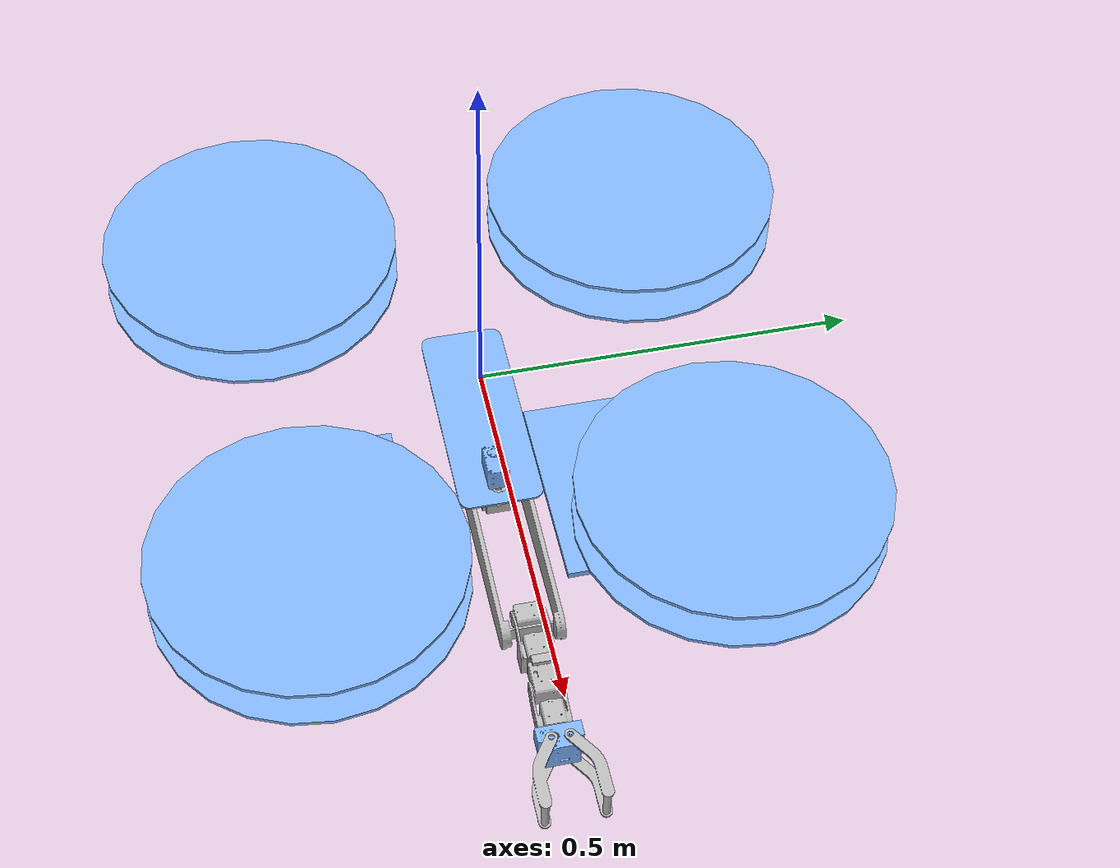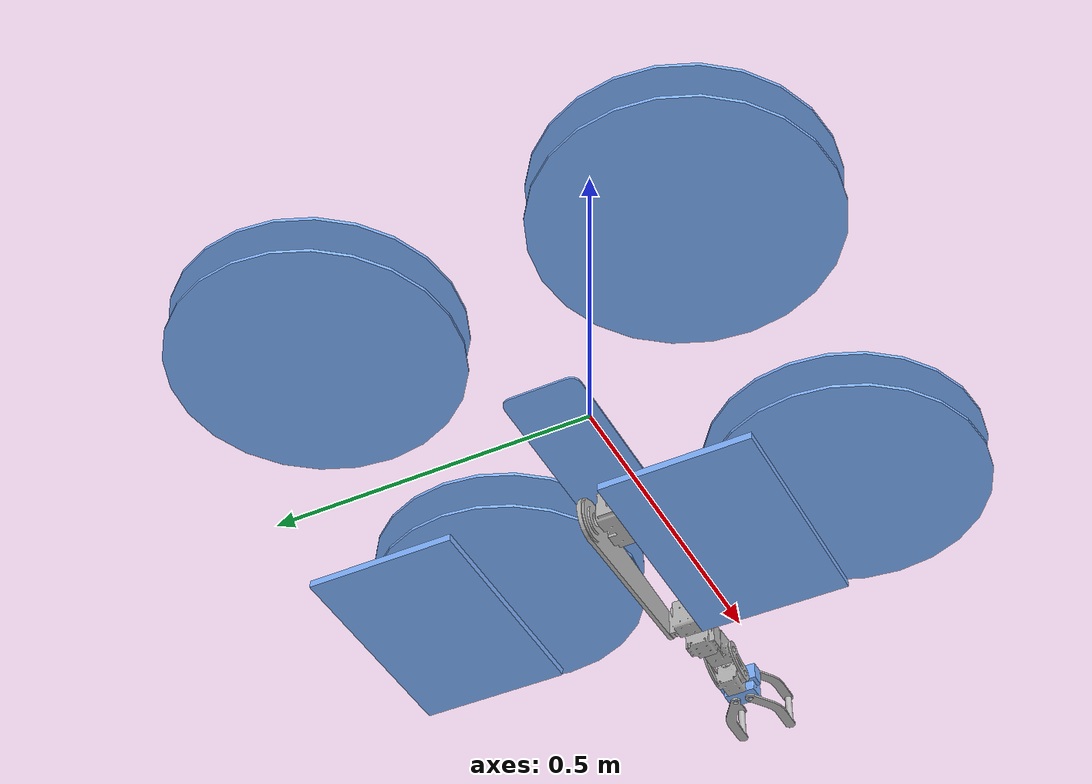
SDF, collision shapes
<sdf version='1.6'>
  <model name='hummingbird'>
    <link name='base_link'>
      <pose frame=''>0 0 0 0 -0 0</pose>
      <inertial>
        <pose frame=''>-0.00612 2.2e-05 -0.052639 0 -0 0</pose>
        <mass>2.24682</mass>
        <inertia>
          <ixx>0.0242961</ixx>
          <ixy>-3.09634e-06</ixy>
          <ixz>-4.73268e-06</ixz>
          <iyy>0.0224294</iyy>
          <iyz>1.91916e-06</iyz>
          <izz>0.0236308</izz>
        </inertia>
      </inertial>
      <collision name='base_link_fixed_joint_lump__01DOF_frame0_collision'>
        <pose frame=''>0.090596 0 -0.116 0 -0 0</pose>
        <geometry>
          <mesh>
            <scale>1 1 1</scale>
            <uri>model://simplified_asm_new_v5/meshes/01DOF_frame0.STL</uri>
          </mesh>
        </geometry>
      </collision>
      <collision name='base_link_inertia_collision_1'>
        <pose frame=''>-0.03 0.2 -0.316 0 -0 0</pose>
        <geometry>
          <box>
            <size>0.3 0.2 0.01</size>
          </box>
        </geometry>
        <surface>
          <contact>
            <ode>
              <min_depth>0.001</min_depth>
              <max_vel>0</max_vel>
            </ode>
          </contact>
          <friction>
            <ode/>
          </friction>
        </surface>
      </collision>
      <collision name='base_link_inertia_collision_2'>
        <pose frame=''>-0.03 -0.2 -0.316 0 -0 0</pose>
        <geometry>
          <box>
            <size>0.3 0.2 0.01</size>
          </box>
        </geometry>
        <surface>
          <contact>
            <ode>
              <min_depth>0.001</min_depth>
              <max_vel>0</max_vel>
            </ode>
          </contact>
          <friction>
            <ode/>
          </friction>
        </surface>
      </collision>
      <visual name='base_link_fixed_joint_lump__01DOF_frame0_visual'>
        <pose frame=''>0.090596 0 -0.116 0 -0 0</pose>
        <geometry>
          <mesh>
            <scale>1 1 1</scale>
            <uri>model://simplified_asm_new_v5/meshes/01DOF_frame0.STL</uri>
          </mesh>
        </geometry>
      </visual>
      <visual name='base_link_inertia_visual_1'>
        <pose frame=''>0 0 0 0 -0 0</pose>
        <geometry>
          <mesh>
            <scale>1 1 1</scale>
            <uri>meshes/base_link.dae</uri>
          </mesh>
        </geometry>
        <material>
          <ambient>1 0 0 1</ambient>
          <diffuse>0.5 0.7 1.0 1.0</diffuse>
          <specular>0.5 0.5 0.5 1</specular>
          <emissive>0 0 0 0</emissive>
        </material>
      </visual>
      <visual name='base_link_fixed_joint_lump__battery_link_visual_2'>
        <pose frame=''>-0.024927 0 -0.059795 0 -0 0</pose>
        <geometry>
          <mesh>
            <scale>1 1 1</scale>
            <uri>meshes/battery_link.dae</uri>
          </mesh>
        </geometry>
      </visual>
      <visual name='base_link_fixed_joint_lump__camera_link_visual_3'>
        <pose frame=''>0.1549 0 -0.1325 1.5708 -0 1.5708</pose>
        <geometry>
          <mesh>
            <scale>1 1 1</scale>
            <uri>meshes/d435.dae</uri>
          </mesh>
        </geometry>
        <material>
          <script>
            <uri>__default__</uri>
            <name>__default__</name>
          </script>
        </material>
      </visual>
      <visual name='base_link_fixed_joint_lump__link_supporter_1_visual_4'>
        <pose frame=''>-0.00858 0.1135 -0.21299 0 -0 0</pose>
        <geometry>
          <mesh>
            <scale>1 1 1</scale>
            <uri>meshes/link_supporter_1.dae</uri>
          </mesh>
        </geometry>
      </visual>
      <visual name='base_link_fixed_joint_lump__link_supporter_2_visual_5'>
        <pose frame=''>-0.00858 -0.1135 -0.21299 0 -0 0</pose>
        <geometry>
          <mesh>
            <scale>1 1 1</scale>
            <uri>meshes/link_supporter_2.dae</uri>
          </mesh>
        </geometry>
      </visual>
      <velocity_decay/>
      <velocity_decay/>
      <self_collide>0</self_collide>
      <enable_wind>0</enable_wind>
      <kinematic>0</kinematic>
      <gravity>1</gravity>
      <sensor name='realsensecolor' type='camera'>
        <camera name='realsense'>
          <horizontal_fov>1.21126</horizontal_fov>
          <image>
            <width>640</width>
            <height>480</height>
            <format>RGB_INT8</format>
          </image>
          <clip>
            <near>0.1</near>
            <far>100</far>
          </clip>
          <noise>
            <type>gaussian</type>
            <mean>0</mean>
            <stddev>0.007</stddev>
          </noise>
        </camera>
        <always_on>1</always_on>
        <update_rate>60</update_rate>
        <visualize>1</visualize>
        <pose frame=''>0.14 0.0175 -0.1325 0 -0 0</pose>
      </sensor>
      <sensor name='realsenseired1' type='camera'>
        <camera name='realsense'>
          <horizontal_fov>1.21126</horizontal_fov>
          <image>
            <width>640</width>
            <height>480</height>
            <format>L_INT8</format>
          </image>
          <clip>
            <near>0.1</near>
            <far>100</far>
          </clip>
          <noise>
            <type>gaussian</type>
            <mean>0</mean>
            <stddev>0.005</stddev>
          </noise>
        </camera>
        <always_on>1</always_on>
        <update_rate>90</update_rate>
        <visualize>0</visualize>
        <pose frame=''>0.14 0.0175 -0.1325 0 -0 0</pose>
      </sensor>
      <sensor name='realsenseired2' type='camera'>
        <camera name='realsense'>
          <horizontal_fov>1.21126</horizontal_fov>
          <image>
            <width>640</width>
            <height>480</height>
            <format>L_INT8</format>
          </image>
          <clip>
            <near>0.1</near>
            <far>100</far>
          </clip>
          <noise>
            <type>gaussian</type>
            <mean>0</mean>
            <stddev>0.005</stddev>
          </noise>
        </camera>
        <always_on>1</always_on>
        <update_rate>90</update_rate>
        <visualize>0</visualize>
        <pose frame=''>0.14 0.0175 -0.1325 0 -0 0</pose>
      </sensor>
      <sensor name='realsensedepth' type='depth'>
        <camera name='realsense'>
          <horizontal_fov>1.21126</horizontal_fov>
          <image>
            <width>640</width>
            <height>480</height>
          </image>
          <clip>
            <near>0.1</near>
            <far>100</far>
          </clip>
          <noise>
            <type>gaussian</type>
            <mean>0</mean>
            <stddev>0.001</stddev>
          </noise>
        </camera>
        <always_on>1</always_on>
        <update_rate>90</update_rate>
        <visualize>0</visualize>
        <pose frame=''>0.14 0.0175 -0.1325 0 -0 0</pose>
      </sensor>
      <gravity>1</gravity>
      <velocity_decay/>
      <self_collide>0</self_collide>
      <gravity>1</gravity>
      <sensor name='imu_sensor' type='imu'>
        <always_on>1</always_on>
        <update_rate>200</update_rate>
        <visualize>1</visualize>
        <plugin name='imu_plugin' filename='libgazebo_ros_imu_sensor.so'>
          <topicName>d435i/imu</topicName>
          <bodyName>camera_link</bodyName>
          <updateRateHZ>200.0</updateRateHZ>
          <gaussianNoise>0.0</gaussianNoise>
          <xyzOffset>0.0 0.0 0.0</xyzOffset>
          <rpyOffset>0.0 0.0 0.0</rpyOffset>
          <frameName>imu_link_</frameName>
        </plugin>
        <pose frame=''>0.14 0.0175 -0.1325 0 -0 0</pose>
      </sensor>
    </link>
    <link name='/imu_link'>
      <pose frame=''>0 0 0 0 -0 0</pose>
      <inertial>
        <pose frame=''>0 0 0 0 -0 0</pose>
        <mass>0.015</mass>
        <inertia>
          <ixx>1e-05</ixx>
          <ixy>0</ixy>
          <ixz>0</ixz>
          <iyy>1e-05</iyy>
          <iyz>0</iyz>
          <izz>1e-05</izz>
        </inertia>
      </inertial>
    </link>
    <joint name='/imu_joint' type='revolute'>
      <child>/imu_link</child>
      <parent>base_link</parent>
      <axis>
        <xyz>1 0 0</xyz>
        <limit>
          <lower>0</lower>
          <upper>0</upper>
          <effort>0</effort>
          <velocity>0</velocity>
        </limit>
        <dynamics>
          <spring_reference>0</spring_reference>
          <spring_stiffness>0</spring_stiffness>
        </dynamics>
        <use_parent_model_frame>1</use_parent_model_frame>
      </axis>
    </joint>
    <link name='02DOF_frame1'>
      <pose frame=''>0.090596 0 -0.116 0 -0 0</pose>
      <inertial>
        <pose frame=''>0.033728 -0.000275 0.0246 0 -0 0</pose>
        <mass>0.19851</mass>
        <inertia>
          <ixx>0.000141122</ixx>
          <ixy>7.22807e-07</ixy>
          <ixz>4.64909e-08</ixz>
          <iyy>0.000771231</iyy>
          <iyz>-4.80458e-11</iyz>
          <izz>0.000878136</izz>
        </inertia>
      </inertial>
      <collision name='02DOF_frame1_collision'>
        <pose frame=''>0 0 0 0 -0 0</pose>
        <geometry>
          <mesh>
            <scale>1 1 1</scale>
            <uri>model://simplified_asm_new_v5/meshes/02DOF_frame1.STL</uri>
          </mesh>
        </geometry>
      </collision>
      <visual name='02DOF_frame1_visual'>
        <pose frame=''>0 0 0 0 -0 0</pose>
        <geometry>
          <mesh>
            <scale>1 1 1</scale>
            <uri>model://simplified_asm_new_v5/meshes/02DOF_frame1.STL</uri>
          </mesh>
        </geometry>
      </visual>
    </link>
    <joint name='joint1' type='revolute'>
      <child>02DOF_frame1</child>
      <parent>base_link</parent>
      <axis>
        <xyz>0 0 1</xyz>
        <limit>
          <lower>-3.14</lower>
          <upper>3.14</upper>
          <effort>300</effort>
          <velocity>5</velocity>
        </limit>
        <dynamics>
          <spring_reference>0</spring_reference>
          <spring_stiffness>0</spring_stiffness>
        </dynamics>
        <use_parent_model_frame>1</use_parent_model_frame>
      </axis>
    </joint>
    <link name='03DOF_frame2'>
      <pose frame=''>0.075096 1.1e-05 -0.116 1.5708 -0 -0.000716</pose>
      <inertial>
        <pose frame=''>0.086767 -0.000312 -0.000208 0 -0 0</pose>
        <mass>0.2776</mass>
        <inertia>
          <ixx>0.000104653</ixx>
          <ixy>-2.49293e-07</ixy>
          <ixz>1.61884e-07</ixz>
          <iyy>0.00124372</iyy>
          <iyz>1.99829e-08</iyz>
          <izz>0.00128333</izz>
        </inertia>
      </inertial>
      <collision name='03DOF_frame2_collision'>
        <pose frame=''>0 0 0 0 -0 0</pose>
        <geometry>
          <mesh>
            <scale>1 1 1</scale>
            <uri>model://simplified_asm_new_v5/meshes/03DOF_frame2.STL</uri>
          </mesh>
        </geometry>
      </collision>
      <visual name='03DOF_frame2_visual'>
        <pose frame=''>0 0 0 0 -0 0</pose>
        <geometry>
          <mesh>
            <scale>1 1 1</scale>
            <uri>model://simplified_asm_new_v5/meshes/03DOF_frame2.STL</uri>
          </mesh>
        </geometry>
      </visual>
    </link>
    <joint name='joint2' type='revolute'>
      <child>03DOF_frame2</child>
      <parent>02DOF_frame1</parent>
      <axis>
        <xyz>-0.000716 -1 -4e-06</xyz>
        <limit>
          <lower>-3.14</lower>
          <upper>0</upper>
          <effort>300</effort>
          <velocity>5</velocity>
        </limit>
        <dynamics>
          <spring_reference>0</spring_reference>
          <spring_stiffness>0</spring_stiffness>
        </dynamics>
        <use_parent_model_frame>1</use_parent_model_frame>
      </axis>
    </joint>
    <link name='04DOF_frame3'>
      <pose frame=''>0.304926 -0.000153 -0.116 -2.35619 -1.57079 -2.35691</pose>
      <inertial>
        <pose frame=''>-0.011032 -0.028798 -0.000519 0 -0 0</pose>
        <mass>0.1104</mass>
        <inertia>
          <ixx>2.01217e-05</ixx>
          <ixy>-2.20278e-06</ixy>
          <ixz>-1.99671e-08</ixz>
          <iyy>2.64982e-05</iyy>
          <iyz>4.80728e-11</iyz>
          <izz>3.25383e-05</izz>
        </inertia>
      </inertial>
      <collision name='04DOF_frame3_collision'>
        <pose frame=''>0 0 0 0 -0 0</pose>
        <geometry>
          <mesh>
            <scale>1 1 1</scale>
            <uri>model://simplified_asm_new_v5/meshes/04DOF_frame3.STL</uri>
          </mesh>
        </geometry>
      </collision>
      <visual name='04DOF_frame3_visual'>
        <pose frame=''>0 0 0 0 -0 0</pose>
        <geometry>
          <mesh>
            <scale>1 1 1</scale>
            <uri>model://simplified_asm_new_v5/meshes/04DOF_frame3.STL</uri>
          </mesh>
        </geometry>
      </visual>
    </link>
    <joint name='joint3' type='revolute'>
      <child>04DOF_frame3</child>
      <parent>03DOF_frame2</parent>
      <axis>
        <xyz>-0.000716 -1 -4e-06</xyz>
        <limit>
          <lower>-2.6</lower>
          <upper>2.6</upper>
          <effort>300</effort>
          <velocity>5</velocity>
        </limit>
        <dynamics>
          <spring_reference>0</spring_reference>
          <spring_stiffness>0</spring_stiffness>
        </dynamics>
        <use_parent_model_frame>1</use_parent_model_frame>
      </axis>
    </joint>
    <link name='05DOF_frame4'>
      <pose frame=''>0.415606 -0.000233 -0.116 -0.785394 -1.57079 -2.35691</pose>
      <inertial>
        <pose frame=''>0.007516 0.000239 -0.060749 0 -0 0</pose>
        <mass>0.091183</mass>
        <inertia>
          <ixx>3.26656e-05</ixx>
          <ixy>-1.99671e-08</ixy>
          <ixz>-2.20279e-06</ixz>
          <iyy>4.48618e-05</iyy>
          <iyz>2.00314e-08</iyz>
          <izz>3.56317e-05</izz>
        </inertia>
      </inertial>
      <collision name='05DOF_frame4_collision'>
        <pose frame=''>0 0 0 0 -0 0</pose>
        <geometry>
          <mesh>
            <scale>1 1 1</scale>
            <uri>model://simplified_asm_new_v5/meshes/05DOF_frame4.STL</uri>
          </mesh>
        </geometry>
      </collision>
      <visual name='05DOF_frame4_visual'>
        <pose frame=''>0 0 0 0 -0 0</pose>
        <geometry>
          <mesh>
            <scale>1 1 1</scale>
            <uri>model://simplified_asm_new_v5/meshes/05DOF_frame4.STL</uri>
          </mesh>
        </geometry>
      </visual>
    </link>
    <joint name='joint4' type='revolute'>
      <child>05DOF_frame4</child>
      <parent>04DOF_frame3</parent>
      <axis>
        <xyz>1 -0.000713 4e-06</xyz>
        <limit>
          <lower>-3.14</lower>
          <upper>3.14</upper>
          <effort>300</effort>
          <velocity>5</velocity>
        </limit>
        <dynamics>
          <spring_reference>0</spring_reference>
          <spring_stiffness>0</spring_stiffness>
        </dynamics>
        <use_parent_model_frame>1</use_parent_model_frame>
      </axis>
    </joint>
    <link name='06DOF_frame5'>
      <pose frame=''>0.415606 -0.000233 -0.116 -2.35619 -1.57079 -2.35691</pose>
      <inertial>
        <pose frame=''>-0.006829 -0.015759 -0.001178 0 -0 0</pose>
        <mass>0.10197</mass>
        <inertia>
          <ixx>2.44078e-05</ixx>
          <ixy>-1.53373e-06</ixy>
          <ixz>-2.86115e-08</ixz>
          <iyy>1.92192e-05</iyy>
          <iyz>-1.20279e-07</iyz>
          <izz>2.94503e-05</izz>
        </inertia>
      </inertial>
      <collision name='06DOF_frame5_collision'>
        <pose frame=''>0 0 0 0 -0 0</pose>
        <geometry>
          <mesh>
            <scale>1 1 1</scale>
            <uri>model://simplified_asm_new_v5/meshes/06DOF_frame5.STL</uri>
          </mesh>
        </geometry>
      </collision>
      <visual name='06DOF_frame5_visual'>
        <pose frame=''>0 0 0 0 -0 0</pose>
        <geometry>
          <mesh>
            <scale>1 1 1</scale>
            <uri>model://simplified_asm_new_v5/meshes/06DOF_frame5.STL</uri>
          </mesh>
        </geometry>
      </visual>
    </link>
    <joint name='joint5' type='revolute'>
      <child>06DOF_frame5</child>
      <parent>05DOF_frame4</parent>
      <axis>
        <xyz>-0.000716 -1 -4e-06</xyz>
        <limit>
          <lower>-1.5</lower>
          <upper>1.8</upper>
          <effort>300</effort>
          <velocity>5</velocity>
        </limit>
        <dynamics>
          <spring_reference>0</spring_reference>
          <spring_stiffness>0</spring_stiffness>
        </dynamics>
        <use_parent_model_frame>1</use_parent_model_frame>
      </axis>
    </joint>
    <link name='07DOF_frame6'>
      <pose frame=''>0.520606 -0.000308 -0.115999 -0.785394 -1.57079 -2.35691</pose>
      <inertial>
        <pose frame=''>-0.0061 -0.000751 -0.065828 0 -0 0</pose>
        <mass>0.10793</mass>
        <inertia>
          <ixx>4.42907e-05</ixx>
          <ixy>-4.77866e-08</ixy>
          <ixz>1.52971e-06</ixz>
          <iyy>3.93504e-05</iyy>
          <iyz>1.20425e-07</iyz>
          <izz>4.00861e-05</izz>
        </inertia>
      </inertial>
      <collision name='07DOF_frame6_collision'>
        <pose frame=''>0 0 0 0 -0 0</pose>
        <geometry>
          <mesh>
            <scale>1 1 1</scale>
            <uri>model://simplified_asm_new_v5/meshes/07DOF_frame6.STL</uri>
          </mesh>
        </geometry>
      </collision>
      <visual name='07DOF_frame6_visual'>
        <pose frame=''>0 0 0 0 -0 0</pose>
        <geometry>
          <mesh>
            <scale>1 1 1</scale>
            <uri>model://simplified_asm_new_v5/meshes/07DOF_frame6.STL</uri>
          </mesh>
        </geometry>
      </visual>
      <visual name='07DOF_frame6_fixed_joint_lump__camera_visual_1'>
        <pose frame=''>0 0 0 0 -0 1.57</pose>
        <geometry>
          <mesh>
            <scale>1 1 1</scale>
            <uri>model://simplified_asm_new_v5/meshes/vi_camera.dae</uri>
          </mesh>
        </geometry>
        <material>
          <ambient>1 0 0 1</ambient>
          <diffuse>0.5 0.7 1.0 1.0</diffuse>
          <specular>0.5 0.5 0.5 1</specular>
          <emissive>0 0 0 0</emissive>
        </material>
      </visual>
      <gravity>1</gravity>
      <velocity_decay/>
      <self_collide>0</self_collide>
      <sensor name='camera1' type='camera'>
        <update_rate>60</update_rate>
        <camera name='head'>
          <horizontal_fov>1.39626</horizontal_fov>
          <pose frame=''>0 0 0 3.14 -1.57 -1.57</pose>
          <image>
            <width>640</width>
            <height>480</height>
            <format>R8G8B8</format>
          </image>
          <clip>
            <near>0.02</near>
            <far>300</far>
          </clip>
        </camera>
        <plugin name='camera_controller' filename='libgazebo_ros_camera.so'>
          <alwaysOn>true</alwaysOn>
          <updateRate>0.0</updateRate>
          <cameraName>/camera</cameraName>
          <imageTopicName>image_rect</imageTopicName>
          <cameraInfoTopicName>camera_info</cameraInfoTopicName>
          <frameName>camera</frameName>
          <hackBaseline>0.07</hackBaseline>
          <distortionK1>0.0</distortionK1>
          <distortionK2>0.0</distortionK2>
          <distortionK3>0.0</distortionK3>
          <distortionT1>0.0</distortionT1>
          <distortionT2>0.0</distortionT2>
        </plugin>
        <pose frame=''>0 0 0 0 -0 1.57</pose>
      </sensor>
    </link>
    <joint name='joint6' type='revolute'>
      <child>07DOF_frame6</child>
      <parent>06DOF_frame5</parent>
      <axis>
        <xyz>1 -0.000713 4e-06</xyz>
        <limit>
          <lower>-3.14</lower>
          <upper>3.14</upper>
          <effort>300</effort>
          <velocity>5</velocity>
        </limit>
        <dynamics>
          <spring_reference>0</spring_reference>
          <spring_stiffness>0</spring_stiffness>
        </dynamics>
        <use_parent_model_frame>1</use_parent_model_frame>
      </axis>
    </joint>
    <link name='finger1'>
      <pose frame=''>0.493864 0.011106 -0.115999 7e-06 7e-06 -1.57151</pose>
      <inertial>
        <pose frame=''>0.00951 -0.035505 -0.00612 0 -0 0</pose>
        <mass>0.0102125</mass>
        <inertia>
          <ixx>4.0484e-05</ixx>
          <ixy>5.41208e-07</ixy>
          <ixz>-4.76707e-08</ixz>
          <iyy>3.99381e-05</iyy>
          <iyz>1.53331e-06</iyz>
          <izz>4.5128e-05</izz>
        </inertia>
      </inertial>
      <collision name='finger1_collision'>
        <pose frame=''>0 0 0 0 -0 0</pose>
        <geometry>
          <mesh>
            <scale>1 1 1</scale>
            <uri>model://simplified_asm_new_v5/meshes/finger1_v2.STL</uri>
          </mesh>
        </geometry>
      </collision>
      <visual name='finger1_visual'>
        <pose frame=''>0 0 0 0 -0 0</pose>
        <geometry>
          <mesh>
            <scale>1 1 1</scale>
            <uri>model://simplified_asm_new_v5/meshes/finger1_v2.STL</uri>
          </mesh>
        </geometry>
      </visual>
    </link>
    <joint name='joint_finger_1' type='revolute'>
      <child>finger1</child>
      <parent>07DOF_frame6</parent>
      <axis>
        <xyz>-7e-06 -7e-06 1</xyz>
        <limit>
          <lower>-0.3</lower>
          <upper>1.2</upper>
          <effort>300</effort>
          <velocity>5</velocity>
        </limit>
        <dynamics>
          <spring_reference>0</spring_reference>
          <spring_stiffness>0</spring_stiffness>
        </dynamics>
        <use_parent_model_frame>1</use_parent_model_frame>
      </axis>
    </joint>
    <link name='finger2'>
      <pose frame=''>0.493847 -0.012289 -0.115999 -3.14159 7e-06 -1.57151</pose>
      <inertial>
        <pose frame=''>-0.011515 0.035505 0.00612 0 -0 0</pose>
        <mass>0.010212</mass>
        <inertia>
          <ixx>4.0484e-05</ixx>
          <ixy>2.99368e-07</ixy>
          <ixz>4.76707e-08</ixz>
          <iyy>3.99381e-05</iyy>
          <iyz>1.53413e-06</iyz>
          <izz>4.5128e-05</izz>
        </inertia>
      </inertial>
      <collision name='finger2_collision'>
        <pose frame=''>0 0 0 0 -0 0</pose>
        <geometry>
          <mesh>
            <scale>1 1 1</scale>
            <uri>model://simplified_asm_new_v5/meshes/finger2_v2.STL</uri>
          </mesh>
        </geometry>
      </collision>
      <visual name='finger2_visual'>
        <pose frame=''>0 0 0 0 -0 0</pose>
        <geometry>
          <mesh>
            <scale>1 1 1</scale>
            <uri>model://simplified_asm_new_v5/meshes/finger2_v2.STL</uri>
          </mesh>
        </geometry>
      </visual>
    </link>
    <joint name='joint_finger_2' type='revolute'>
      <child>finger2</child>
      <parent>07DOF_frame6</parent>
      <axis>
        <xyz>0 7e-06 -1</xyz>
        <limit>
          <lower>-0.3</lower>
          <upper>1.2</upper>
          <effort>300</effort>
          <velocity>5</velocity>
        </limit>
        <dynamics>
          <spring_reference>0</spring_reference>
          <spring_stiffness>0</spring_stiffness>
        </dynamics>
        <use_parent_model_frame>1</use_parent_model_frame>
      </axis>
    </joint>
    <link name='rotor_0'>
      <pose frame=''>0.26701 -0.26701 0.04 0 -0 0</pose>
      <inertial>
        <pose frame=''>0 0 0 0 -0 0</pose>
        <mass>0.009</mass>
        <inertia>
          <ixx>1.755e-06</ixx>
          <ixy>0</ixy>
          <ixz>0</ixz>
          <iyy>0.00120007</iyy>
          <iyz>0</iyz>
          <izz>0.00120169</izz>
        </inertia>
      </inertial>
      <collision name='rotor_0_collision'>
        <pose frame=''>0 0 0 0 -0 0</pose>
        <geometry>
          <cylinder>
            <length>0.005</length>
            <radius>0.2</radius>
          </cylinder>
        </geometry>
        <surface>
          <contact>
            <ode/>
          </contact>
          <friction>
            <ode/>
          </friction>
        </surface>
      </collision>
      <visual name='rotor_0_visual'>
        <pose frame=''>0 0 0 0 -0 0</pose>
        <geometry>
          <mesh>
            <scale>0.2 0.2 0.2</scale>
            <uri>meshes/propeller_ccw.dae</uri>
          </mesh>
        </geometry>
        <material>
          <ambient>1 0 0 1</ambient>
          <diffuse>0.5 0.7 1.0 1.0</diffuse>
          <specular>0.5 0.5 0.5 1</specular>
          <emissive>0 0 0 0</emissive>
        </material>
      </visual>
      <gravity>1</gravity>
      <velocity_decay/>
      <self_collide>0</self_collide>
    </link>
    <joint name='rotor_0_joint' type='revolute'>
      <child>rotor_0</child>
      <parent>base_link</parent>
      <axis>
        <xyz>0 0 1</xyz>
        <limit>
          <lower>-1e+16</lower>
          <upper>1e+16</upper>
        </limit>
        <dynamics>
          <spring_reference>0</spring_reference>
          <spring_stiffness>0</spring_stiffness>
        </dynamics>
        <use_parent_model_frame>1</use_parent_model_frame>
      </axis>
    </joint>
    <link name='rotor_1'>
      <pose frame=''>-0.26701 0.26701 0.04 0 -0 0</pose>
      <inertial>
        <pose frame=''>0 0 0 0 -0 0</pose>
        <mass>0.009</mass>
        <inertia>
          <ixx>1.755e-06</ixx>
          <ixy>0</ixy>
          <ixz>0</ixz>
          <iyy>0.00120007</iyy>
          <iyz>0</iyz>
          <izz>0.00120169</izz>
        </inertia>
      </inertial>
      <collision name='rotor_1_collision'>
        <pose frame=''>0 0 0 0 -0 0</pose>
        <geometry>
          <cylinder>
            <length>0.005</length>
            <radius>0.2</radius>
          </cylinder>
        </geometry>
        <surface>
          <contact>
            <ode/>
          </contact>
          <friction>
            <ode/>
          </friction>
        </surface>
      </collision>
      <visual name='rotor_1_visual'>
        <pose frame=''>0 0 0 0 -0 0</pose>
        <geometry>
          <mesh>
            <scale>0.2 0.2 0.2</scale>
            <uri>meshes/propeller_ccw.dae</uri>
          </mesh>
        </geometry>
        <material>
          <ambient>1 0 0 1</ambient>
          <diffuse>0.5 0.7 1.0 1.0</diffuse>
          <specular>0.5 0.5 0.5 1</specular>
          <emissive>0 0 0 0</emissive>
        </material>
      </visual>
      <gravity>1</gravity>
      <velocity_decay/>
      <self_collide>0</self_collide>
    </link>
    <joint name='rotor_1_joint' type='revolute'>
      <child>rotor_1</child>
      <parent>base_link</parent>
      <axis>
        <xyz>0 0 1</xyz>
        <limit>
          <lower>-1e+16</lower>
          <upper>1e+16</upper>
        </limit>
        <dynamics>
          <spring_reference>0</spring_reference>
          <spring_stiffness>0</spring_stiffness>
        </dynamics>
        <use_parent_model_frame>1</use_parent_model_frame>
      </axis>
    </joint>
    <link name='rotor_2'>
      <pose frame=''>0.26701 0.26701 0.04 0 -0 0</pose>
      <inertial>
        <pose frame=''>0 0 0 0 -0 0</pose>
        <mass>0.009</mass>
        <inertia>
          <ixx>1.755e-06</ixx>
          <ixy>0</ixy>
          <ixz>0</ixz>
          <iyy>0.00120007</iyy>
          <iyz>0</iyz>
          <izz>0.00120169</izz>
        </inertia>
      </inertial>
      <collision name='rotor_2_collision'>
        <pose frame=''>0 0 0 0 -0 0</pose>
        <geometry>
          <cylinder>
            <length>0.005</length>
            <radius>0.2</radius>
          </cylinder>
        </geometry>
        <surface>
          <contact>
            <ode/>
          </contact>
          <friction>
            <ode/>
          </friction>
        </surface>
      </collision>
      <visual name='rotor_2_visual'>
        <pose frame=''>0 0 0 0 -0 0</pose>
        <geometry>
          <mesh>
            <scale>0.2 0.2 0.2</scale>
            <uri>meshes/propeller_cw.dae</uri>
          </mesh>
        </geometry>
        <material>
          <ambient>1 0 0 1</ambient>
          <diffuse>0.5 0.7 1.0 1.0</diffuse>
          <specular>0.5 0.5 0.5 1</specular>
          <emissive>0 0 0 0</emissive>
        </material>
      </visual>
      <gravity>1</gravity>
      <velocity_decay/>
      <self_collide>0</self_collide>
    </link>
    <joint name='rotor_2_joint' type='revolute'>
      <child>rotor_2</child>
      <parent>base_link</parent>
      <axis>
        <xyz>0 0 1</xyz>
        <limit>
          <lower>-1e+16</lower>
          <upper>1e+16</upper>
        </limit>
        <dynamics>
          <spring_reference>0</spring_reference>
          <spring_stiffness>0</spring_stiffness>
        </dynamics>
        <use_parent_model_frame>1</use_parent_model_frame>
      </axis>
    </joint>
    <link name='rotor_3'>
      <pose frame=''>-0.26701 -0.26701 0.04 0 -0 0</pose>
      <inertial>
        <pose frame=''>0 0 0 0 -0 0</pose>
        <mass>0.009</mass>
        <inertia>
          <ixx>1.755e-06</ixx>
          <ixy>0</ixy>
          <ixz>0</ixz>
          <iyy>0.00120007</iyy>
          <iyz>0</iyz>
          <izz>0.00120169</izz>
        </inertia>
      </inertial>
      <collision name='rotor_3_collision'>
        <pose frame=''>0 0 0 0 -0 0</pose>
        <geometry>
          <cylinder>
            <length>0.005</length>
            <radius>0.2</radius>
          </cylinder>
        </geometry>
        <surface>
          <contact>
            <ode/>
          </contact>
          <friction>
            <ode/>
          </friction>
        </surface>
      </collision>
      <visual name='rotor_3_visual'>
        <pose frame=''>0 0 0 0 -0 0</pose>
        <geometry>
          <mesh>
            <scale>0.2 0.2 0.2</scale>
            <uri>meshes/propeller_cw.dae</uri>
          </mesh>
        </geometry>
        <material>
          <ambient>1 0 0 1</ambient>
          <diffuse>0.5 0.7 1.0 1.0</diffuse>
          <specular>0.5 0.5 0.5 1</specular>
          <emissive>0 0 0 0</emissive>
        </material>
      </visual>
      <gravity>1</gravity>
      <velocity_decay/>
      <self_collide>0</self_collide>
    </link>
    <joint name='rotor_3_joint' type='revolute'>
      <child>rotor_3</child>
      <parent>base_link</parent>
      <axis>
        <xyz>0 0 1</xyz>
        <limit>
          <lower>-1e+16</lower>
          <upper>1e+16</upper>
        </limit>
        <dynamics>
          <spring_reference>0</spring_reference>
          <spring_stiffness>0</spring_stiffness>
        </dynamics>
        <use_parent_model_frame>1</use_parent_model_frame>
      </axis>
    </joint>
    <link name='rotor_4'>
      <pose frame=''>0.26701 -0.26701 -0.02 0 -0 0</pose>
      <inertial>
        <pose frame=''>0 0 0 0 -0 0</pose>
        <mass>0.009</mass>
        <inertia>
          <ixx>1.755e-06</ixx>
          <ixy>0</ixy>
          <ixz>0</ixz>
          <iyy>0.00120007</iyy>
          <iyz>0</iyz>
          <izz>0.00120169</izz>
        </inertia>
      </inertial>
      <collision name='rotor_4_collision'>
        <pose frame=''>0 0 0 0 -0 0</pose>
        <geometry>
          <cylinder>
            <length>0.005</length>
            <radius>0.2</radius>
          </cylinder>
        </geometry>
        <surface>
          <contact>
            <ode/>
          </contact>
          <friction>
            <ode/>
          </friction>
        </surface>
      </collision>
      <visual name='rotor_4_visual'>
        <pose frame=''>0 0 0 0 -0 0</pose>
        <geometry>
          <mesh>
            <scale>0.2 0.2 0.2</scale>
            <uri>meshes/propeller_ccw.dae</uri>
          </mesh>
        </geometry>
        <material>
          <ambient>1 0 0 1</ambient>
          <diffuse>0.5 0.7 1.0 1.0</diffuse>
          <specular>0.5 0.5 0.5 1</specular>
          <emissive>0 0 0 0</emissive>
        </material>
      </visual>
      <gravity>1</gravity>
      <velocity_decay/>
      <self_collide>0</self_collide>
    </link>
    <joint name='rotor_4_joint' type='revolute'>
      <child>rotor_4</child>
      <parent>base_link</parent>
      <axis>
        <xyz>0 0 1</xyz>
        <limit>
          <lower>-1e+16</lower>
          <upper>1e+16</upper>
        </limit>
        <dynamics>
          <spring_reference>0</spring_reference>
          <spring_stiffness>0</spring_stiffness>
        </dynamics>
        <use_parent_model_frame>1</use_parent_model_frame>
      </axis>
    </joint>
    <link name='rotor_5'>
      <pose frame=''>-0.26701 0.26701 -0.02 0 -0 0</pose>
      <inertial>
        <pose frame=''>0 0 0 0 -0 0</pose>
        <mass>0.009</mass>
        <inertia>
          <ixx>1.755e-06</ixx>
          <ixy>0</ixy>
          <ixz>0</ixz>
          <iyy>0.00120007</iyy>
          <iyz>0</iyz>
          <izz>0.00120169</izz>
        </inertia>
      </inertial>
      <collision name='rotor_5_collision'>
        <pose frame=''>0 0 0 0 -0 0</pose>
        <geometry>
          <cylinder>
            <length>0.005</length>
            <radius>0.2</radius>
          </cylinder>
        </geometry>
        <surface>
          <contact>
            <ode/>
          </contact>
          <friction>
            <ode/>
          </friction>
        </surface>
      </collision>
      <visual name='rotor_5_visual'>
        <pose frame=''>0 0 0 0 -0 0</pose>
        <geometry>
          <mesh>
            <scale>0.2 0.2 0.2</scale>
            <uri>meshes/propeller_ccw.dae</uri>
          </mesh>
        </geometry>
        <material>
          <ambient>1 0 0 1</ambient>
          <diffuse>0.5 0.7 1.0 1.0</diffuse>
          <specular>0.5 0.5 0.5 1</specular>
          <emissive>0 0 0 0</emissive>
        </material>
      </visual>
      <gravity>1</gravity>
      <velocity_decay/>
      <self_collide>0</self_collide>
    </link>
    <joint name='rotor_5_joint' type='revolute'>
      <child>rotor_5</child>
      <parent>base_link</parent>
      <axis>
        <xyz>0 0 1</xyz>
        <limit>
          <lower>-1e+16</lower>
          <upper>1e+16</upper>
        </limit>
        <dynamics>
          <spring_reference>0</spring_reference>
          <spring_stiffness>0</spring_stiffness>
        </dynamics>
        <use_parent_model_frame>1</use_parent_model_frame>
      </axis>
    </joint>
    <link name='rotor_6'>
      <pose frame=''>0.26701 0.26701 -0.02 0 -0 0</pose>
      <inertial>
        <pose frame=''>0 0 0 0 -0 0</pose>
        <mass>0.009</mass>
        <inertia>
          <ixx>1.755e-06</ixx>
          <ixy>0</ixy>
          <ixz>0</ixz>
          <iyy>0.00120007</iyy>
          <iyz>0</iyz>
          <izz>0.00120169</izz>
        </inertia>
      </inertial>
      <collision name='rotor_6_collision'>
        <pose frame=''>0 0 0 0 -0 0</pose>
        <geometry>
          <cylinder>
            <length>0.005</length>
            <radius>0.2</radius>
          </cylinder>
        </geometry>
        <surface>
          <contact>
            <ode/>
          </contact>
          <friction>
            <ode/>
          </friction>
        </surface>
      </collision>
      <visual name='rotor_6_visual'>
        <pose frame=''>0 0 0 0 -0 0</pose>
        <geometry>
          <mesh>
            <scale>0.2 0.2 0.2</scale>
            <uri>meshes/propeller_cw.dae</uri>
          </mesh>
        </geometry>
        <material>
          <ambient>1 0 0 1</ambient>
          <diffuse>0.5 0.7 1.0 1.0</diffuse>
          <specular>0.5 0.5 0.5 1</specular>
          <emissive>0 0 0 0</emissive>
        </material>
      </visual>
      <gravity>1</gravity>
      <velocity_decay/>
      <self_collide>0</self_collide>
    </link>
    <joint name='rotor_6_joint' type='revolute'>
      <child>rotor_6</child>
      <parent>base_link</parent>
      <axis>
        <xyz>0 0 1</xyz>
        <limit>
          <lower>-1e+16</lower>
          <upper>1e+16</upper>
        </limit>
        <dynamics>
          <spring_reference>0</spring_reference>
          <spring_stiffness>0</spring_stiffness>
        </dynamics>
        <use_parent_model_frame>1</use_parent_model_frame>
      </axis>
    </joint>
    <link name='rotor_7'>
      <pose frame=''>-0.26701 -0.26701 -0.02 0 -0 0</pose>
      <inertial>
        <pose frame=''>0 0 0 0 -0 0</pose>
        <mass>0.009</mass>
        <inertia>
          <ixx>1.755e-06</ixx>
          <ixy>0</ixy>
          <ixz>0</ixz>
          <iyy>0.00120007</iyy>
          <iyz>0</iyz>
          <izz>0.00120169</izz>
        </inertia>
      </inertial>
      <collision name='rotor_7_collision'>
        <pose frame=''>0 0 0 0 -0 0</pose>
        <geometry>
          <cylinder>
            <length>0.005</length>
            <radius>0.2</radius>
          </cylinder>
        </geometry>
        <surface>
          <contact>
            <ode/>
          </contact>
          <friction>
            <ode/>
          </friction>
        </surface>
      </collision>
      <visual name='rotor_7_visual'>
        <pose frame=''>0 0 0 0 -0 0</pose>
        <geometry>
          <mesh>
            <scale>0.2 0.2 0.2</scale>
            <uri>meshes/propeller_cw.dae</uri>
          </mesh>
        </geometry>
        <material>
          <ambient>1 0 0 1</ambient>
          <diffuse>0.5 0.7 1.0 1.0</diffuse>
          <specular>0.5 0.5 0.5 1</specular>
          <emissive>0 0 0 0</emissive>
        </material>
      </visual>
      <gravity>1</gravity>
      <velocity_decay/>
      <self_collide>0</self_collide>
    </link>
    <joint name='rotor_7_joint' type='revolute'>
      <child>rotor_7</child>
      <parent>base_link</parent>
      <axis>
        <xyz>0 0 1</xyz>
        <limit>
          <lower>-1e+16</lower>
          <upper>1e+16</upper>
        </limit>
        <dynamics>
          <spring_reference>0</spring_reference>
          <spring_stiffness>0</spring_stiffness>
        </dynamics>
        <use_parent_model_frame>1</use_parent_model_frame>
      </axis>
    </joint>
    <plugin name='realsense' filename='librealsense_gazebo_plugin.so'>
      <prefix>realsense</prefix>
      <depthUpdateRate>60.0</depthUpdateRate>
      <colorUpdateRate>60.0</colorUpdateRate>
      <infraredUpdateRate>60.0</infraredUpdateRate>
      <depthTopicName>depth/image_raw</depthTopicName>
      <depthCameraInfoTopicName>depth/camera_info</depthCameraInfoTopicName>
      <colorTopicName>color/image_raw</colorTopicName>
      <colorCameraInfoTopicName>color/camera_info</colorCameraInfoTopicName>
      <infrared1TopicName>infra1/image_raw</infrared1TopicName>
      <infrared1CameraInfoTopicName>infra1/camera_info</infrared1CameraInfoTopicName>
      <infrared2TopicName>infra2/image_raw</infrared2TopicName>
      <infrared2CameraInfoTopicName>infra2/camera_info</infrared2CameraInfoTopicName>
      <colorOpticalframeName>camera_color_optical_frame</colorOpticalframeName>
      <depthOpticalframeName>camera_depth_optical_frame</depthOpticalframeName>
      <infrared1OpticalframeName>camera_left_ir_optical_frame</infrared1OpticalframeName>
      <infrared2OpticalframeName>camera_right_ir_optical_frame</infrared2OpticalframeName>
      <rangeMinDepth>0.2</rangeMinDepth>
      <rangeMaxDepth>10.0</rangeMaxDepth>
      <pointCloud>true</pointCloud>
      <pointCloudTopicName>depth/points</pointCloudTopicName>
      <pointCloudCutoff>0.5</pointCloudCutoff>
      <pointCloudCutoffMax>9.0</pointCloudCutoffMax>
    </plugin>
    <plugin name='gazebo_ros_control' filename='libgazebo_ros_control.so'>
      <robotNamespace>/</robotNamespace>
      <robotSimType>gazebo_ros_control/DefaultRobotHWSim</robotSimType>
      <legacyModeNS>true</legacyModeNS>
    </plugin>
    <plugin name='gazebo_grasp_fix' filename='libgazebo_grasp_fix.so'>
      <arm>
        <arm_name>simplified_asm_new_v5</arm_name>
        <palm_link>07DOF_frame6</palm_link>
        <gripper_link>finger1</gripper_link>
        <gripper_link>finger2</gripper_link>
      </arm>
      <forces_angle_tolerance>100</forces_angle_tolerance>
      <update_rate>100</update_rate>
      <grip_count_threshold>4</grip_count_threshold>
      <max_grip_count>8</max_grip_count>
      <release_tolerance>0.005</release_tolerance>
      <disable_collisions_on_attach>false</disable_collisions_on_attach>
      <contact_topic>__default_topic__</contact_topic>
    </plugin>
    <plugin name='rosbag' filename='libgazebo_multirotor_base_plugin.so'>
      <robotNamespace/>
      <linkName>base_link</linkName>
      <rotorVelocitySlowdownSim>10</rotorVelocitySlowdownSim>
    </plugin>
    <plugin name='front_right_up_motor_model' filename='libgazebo_motor_model.so'>
      <robotNamespace/>
      <jointName>rotor_0_joint</jointName>
      <linkName>rotor_0</linkName>
      <turningDirection>ccw</turningDirection>
      <timeConstantUp>0.0125</timeConstantUp>
      <timeConstantDown>0.025</timeConstantDown>
      <maxRotVelocity>1000</maxRotVelocity>
      <motorConstant>8.54858e-06</motorConstant>
      <momentConstant>0.016</momentConstant>
      <commandSubTopic>/gazebo/command/motor_speed</commandSubTopic>
      <motorNumber>0</motorNumber>
      <rotorDragCoefficient>8.06428e-05</rotorDragCoefficient>
      <rollingMomentCoefficient>1e-06</rollingMomentCoefficient>
      <motorSpeedPubTopic>/motor_speed/0</motorSpeedPubTopic>
      <rotorVelocitySlowdownSim>10</rotorVelocitySlowdownSim>
    </plugin>
    <plugin name='front_left_up_motor_model' filename='libgazebo_motor_model.so'>
      <robotNamespace/>
      <jointName>rotor_2_joint</jointName>
      <linkName>rotor_2</linkName>
      <turningDirection>cw</turningDirection>
      <timeConstantUp>0.0125</timeConstantUp>
      <timeConstantDown>0.025</timeConstantDown>
      <maxRotVelocity>1000</maxRotVelocity>
      <motorConstant>8.54858e-06</motorConstant>
      <momentConstant>0.016</momentConstant>
      <commandSubTopic>/gazebo/command/motor_speed</commandSubTopic>
      <motorNumber>2</motorNumber>
      <rotorDragCoefficient>8.06428e-05</rotorDragCoefficient>
      <rollingMomentCoefficient>1e-06</rollingMomentCoefficient>
      <motorSpeedPubTopic>/motor_speed/2</motorSpeedPubTopic>
      <rotorVelocitySlowdownSim>10</rotorVelocitySlowdownSim>
    </plugin>
    <plugin name='back_left_up_motor_model' filename='libgazebo_motor_model.so'>
      <robotNamespace/>
      <jointName>rotor_1_joint</jointName>
      <linkName>rotor_1</linkName>
      <turningDirection>ccw</turningDirection>
      <timeConstantUp>0.0125</timeConstantUp>
      <timeConstantDown>0.025</timeConstantDown>
      <maxRotVelocity>1000</maxRotVelocity>
      <motorConstant>8.54858e-06</motorConstant>
      <momentConstant>0.016</momentConstant>
      <commandSubTopic>/gazebo/command/motor_speed</commandSubTopic>
      <motorNumber>1</motorNumber>
      <rotorDragCoefficient>8.06428e-05</rotorDragCoefficient>
      <rollingMomentCoefficient>1e-06</rollingMomentCoefficient>
      <motorSpeedPubTopic>/motor_speed/1</motorSpeedPubTopic>
      <rotorVelocitySlowdownSim>10</rotorVelocitySlowdownSim>
    </plugin>
    <plugin name='back_right_up_motor_model' filename='libgazebo_motor_model.so'>
      <robotNamespace/>
      <jointName>rotor_3_joint</jointName>
      <linkName>rotor_3</linkName>
      <turningDirection>cw</turningDirection>
      <timeConstantUp>0.0125</timeConstantUp>
      <timeConstantDown>0.025</timeConstantDown>
      <maxRotVelocity>1000</maxRotVelocity>
      <motorConstant>8.54858e-06</motorConstant>
      <momentConstant>0.016</momentConstant>
      <commandSubTopic>/gazebo/command/motor_speed</commandSubTopic>
      <motorNumber>3</motorNumber>
      <rotorDragCoefficient>8.06428e-05</rotorDragCoefficient>
      <rollingMomentCoefficient>1e-06</rollingMomentCoefficient>
      <motorSpeedPubTopic>/motor_speed/3</motorSpeedPubTopic>
      <rotorVelocitySlowdownSim>10</rotorVelocitySlowdownSim>
    </plugin>
    <plugin name='front_right_down_motor_model' filename='libgazebo_motor_model.so'>
      <robotNamespace/>
      <jointName>rotor_4_joint</jointName>
      <linkName>rotor_4</linkName>
      <turningDirection>ccw</turningDirection>
      <timeConstantUp>0.0125</timeConstantUp>
      <timeConstantDown>0.025</timeConstantDown>
      <maxRotVelocity>1000</maxRotVelocity>
      <motorConstant>8.54858e-06</motorConstant>
      <momentConstant>0.016</momentConstant>
      <commandSubTopic>/gazebo/command/motor_speed</commandSubTopic>
      <motorNumber>4</motorNumber>
      <rotorDragCoefficient>8.06428e-05</rotorDragCoefficient>
      <rollingMomentCoefficient>1e-06</rollingMomentCoefficient>
      <motorSpeedPubTopic>/motor_speed/4</motorSpeedPubTopic>
      <rotorVelocitySlowdownSim>10</rotorVelocitySlowdownSim>
    </plugin>
    <plugin name='front_left_down_motor_model' filename='libgazebo_motor_model.so'>
      <robotNamespace/>
      <jointName>rotor_6_joint</jointName>
      <linkName>rotor_6</linkName>
      <turningDirection>cw</turningDirection>
      <timeConstantUp>0.0125</timeConstantUp>
      <timeConstantDown>0.025</timeConstantDown>
      <maxRotVelocity>1000</maxRotVelocity>
      <motorConstant>8.54858e-06</motorConstant>
      <momentConstant>0.016</momentConstant>
      <commandSubTopic>/gazebo/command/motor_speed</commandSubTopic>
      <motorNumber>6</motorNumber>
      <rotorDragCoefficient>8.06428e-05</rotorDragCoefficient>
      <rollingMomentCoefficient>1e-06</rollingMomentCoefficient>
      <motorSpeedPubTopic>/motor_speed/6</motorSpeedPubTopic>
      <rotorVelocitySlowdownSim>10</rotorVelocitySlowdownSim>
    </plugin>
    <plugin name='back_left_down_motor_model' filename='libgazebo_motor_model.so'>
      <robotNamespace/>
      <jointName>rotor_5_joint</jointName>
      <linkName>rotor_5</linkName>
      <turningDirection>ccw</turningDirection>
      <timeConstantUp>0.0125</timeConstantUp>
      <timeConstantDown>0.025</timeConstantDown>
      <maxRotVelocity>1000</maxRotVelocity>
      <motorConstant>8.54858e-06</motorConstant>
      <momentConstant>0.016</momentConstant>
      <commandSubTopic>/gazebo/command/motor_speed</commandSubTopic>
      <motorNumber>5</motorNumber>
      <rotorDragCoefficient>8.06428e-05</rotorDragCoefficient>
      <rollingMomentCoefficient>1e-06</rollingMomentCoefficient>
      <motorSpeedPubTopic>/motor_speed/5</motorSpeedPubTopic>
      <rotorVelocitySlowdownSim>10</rotorVelocitySlowdownSim>
    </plugin>
    <plugin name='back_right_down_motor_model' filename='libgazebo_motor_model.so'>
      <robotNamespace/>
      <jointName>rotor_7_joint</jointName>
      <linkName>rotor_7</linkName>
      <turningDirection>cw</turningDirection>
      <timeConstantUp>0.0125</timeConstantUp>
      <timeConstantDown>0.025</timeConstantDown>
      <maxRotVelocity>1000</maxRotVelocity>
      <motorConstant>8.54858e-06</motorConstant>
      <momentConstant>0.016</momentConstant>
      <commandSubTopic>/gazebo/command/motor_speed</commandSubTopic>
      <motorNumber>7</motorNumber>
      <rotorDragCoefficient>8.06428e-05</rotorDragCoefficient>
      <rollingMomentCoefficient>1e-06</rollingMomentCoefficient>
      <motorSpeedPubTopic>/motor_speed/7</motorSpeedPubTopic>
      <rotorVelocitySlowdownSim>10</rotorVelocitySlowdownSim>
    </plugin>
    <plugin name='magnetometer_plugin' filename='libgazebo_magnetometer_plugin.so'>
      <robotNamespace/>
      <pubRate>20</pubRate>
      <noiseDensity>0.0004</noiseDensity>
      <randomWalk>6.4e-06</randomWalk>
      <biasCorrelationTime>600</biasCorrelationTime>
      <magTopic>/mag</magTopic>
    </plugin>
    <plugin name='barometer_plugin' filename='libgazebo_barometer_plugin.so'>
      <robotNamespace/>
      <pubRate>10</pubRate>
      <baroTopic>/baro</baroTopic>
    </plugin>
    <plugin name='mavlink_interface' filename='libgazebo_mavlink_interface.so'>
      <robotNamespace/>
      <imuSubTopic>/imu</imuSubTopic>
      <gpsSubTopic>/gps</gpsSubTopic>
      <magSubTopic>/mag</magSubTopic>
      <baroSubTopic>/baro</baroSubTopic>
      <mavlink_addr>INADDR_ANY</mavlink_addr>
      <mavlink_udp_port>14560</mavlink_udp_port>
      <mavlink_tcp_port>4560</mavlink_tcp_port>
      <serialEnabled>false</serialEnabled>
      <serialDevice>/dev/ttyACM0</serialDevice>
      <baudRate>921600</baudRate>
      <qgc_addr>INADDR_ANY</qgc_addr>
      <qgc_udp_port>14550</qgc_udp_port>
      <sdk_addr>INADDR_ANY</sdk_addr>
      <sdk_udp_port>14540</sdk_udp_port>
      <hil_mode>false</hil_mode>
      <hil_state_level>false</hil_state_level>
      <vehicle_is_tailsitter>false</vehicle_is_tailsitter>
      <send_vision_estimation>false</send_vision_estimation>
      <send_odometry>false</send_odometry>
      <enable_lockstep>true</enable_lockstep>
      <use_tcp>true</use_tcp>
      <motorSpeedCommandPubTopic>/gazebo/command/motor_speed</motorSpeedCommandPubTopic>
      <control_channels>
        <channel name='rotor1'>
          <input_index>0</input_index>
          <input_offset>0</input_offset>
          <input_scaling>1000</input_scaling>
          <zero_position_disarmed>0</zero_position_disarmed>
          <zero_position_armed>100</zero_position_armed>
          <joint_control_type>velocity</joint_control_type>
        </channel>
        <channel name='rotor2'>
          <input_index>1</input_index>
          <input_offset>0</input_offset>
          <input_scaling>1000</input_scaling>
          <zero_position_disarmed>0</zero_position_disarmed>
          <zero_position_armed>100</zero_position_armed>
          <joint_control_type>velocity</joint_control_type>
        </channel>
        <channel name='rotor3'>
          <input_index>2</input_index>
          <input_offset>0</input_offset>
          <input_scaling>1000</input_scaling>
          <zero_position_disarmed>0</zero_position_disarmed>
          <zero_position_armed>100</zero_position_armed>
          <joint_control_type>velocity</joint_control_type>
        </channel>
        <channel name='rotor4'>
          <input_index>3</input_index>
          <input_offset>0</input_offset>
          <input_scaling>1000</input_scaling>
          <zero_position_disarmed>0</zero_position_disarmed>
          <zero_position_armed>100</zero_position_armed>
          <joint_control_type>velocity</joint_control_type>
        </channel>
        <channel name='rotor5'>
          <input_index>4</input_index>
          <input_offset>1</input_offset>
          <input_scaling>324.6</input_scaling>
          <zero_position_disarmed>0</zero_position_disarmed>
          <zero_position_armed>0</zero_position_armed>
          <joint_control_type>velocity</joint_control_type>
          <joint_control_pid>
            <p>0.1</p>
            <i>0</i>
            <d>0</d>
            <iMax>0.0</iMax>
            <iMin>0.0</iMin>
            <cmdMax>2</cmdMax>
            <cmdMin>-2</cmdMin>
          </joint_control_pid>
          <joint_name>zephyr_delta_wing::propeller_joint</joint_name>
        </channel>
        <channel name='rotor6'>
          <input_index>5</input_index>
          <input_offset>0</input_offset>
          <input_scaling>0.524</input_scaling>
          <zero_position_disarmed>0</zero_position_disarmed>
          <zero_position_armed>0</zero_position_armed>
          <joint_control_type>position</joint_control_type>
          <joint_name>zephyr_delta_wing::flap_left_joint</joint_name>
          <joint_control_pid>
            <p>10.0</p>
            <i>0</i>
            <d>0</d>
            <iMax>0</iMax>
            <iMin>0</iMin>
            <cmdMax>20</cmdMax>
            <cmdMin>-20</cmdMin>
          </joint_control_pid>
        </channel>
        <channel name='rotor7'>
          <input_index>6</input_index>
          <input_offset>0</input_offset>
          <input_scaling>0.524</input_scaling>
          <zero_position_disarmed>0</zero_position_disarmed>
          <zero_position_armed>0</zero_position_armed>
          <joint_control_type>position</joint_control_type>
          <joint_name>zephyr_delta_wing::flap_right_joint</joint_name>
          <joint_control_pid>
            <p>10.0</p>
            <i>0</i>
            <d>0</d>
            <iMax>0</iMax>
            <iMin>0</iMin>
            <cmdMax>20</cmdMax>
            <cmdMin>-20</cmdMin>
          </joint_control_pid>
        </channel>
        <channel name='rotor8'>
          <input_index>7</input_index>
          <input_offset>0</input_offset>
          <input_scaling>0.524</input_scaling>
          <zero_position_disarmed>0</zero_position_disarmed>
          <zero_position_armed>0</zero_position_armed>
          <joint_control_type>position</joint_control_type>
        </channel>
      </control_channels>
    </plugin>
    <static>0</static>
    <plugin name='rotors_gazebo_imu_plugin' filename='libgazebo_imu_plugin.so'>
      <robotNamespace/>
      <linkName>/imu_link</linkName>
      <imuTopic>/imu</imuTopic>
      <gyroscopeNoiseDensity>0.00018665</gyroscopeNoiseDensity>
      <gyroscopeRandomWalk>3.8785e-05</gyroscopeRandomWalk>
      <gyroscopeBiasCorrelationTime>1000.0</gyroscopeBiasCorrelationTime>
      <gyroscopeTurnOnBiasSigma>0.0087</gyroscopeTurnOnBiasSigma>
      <accelerometerNoiseDensity>0.00186</accelerometerNoiseDensity>
      <accelerometerRandomWalk>0.006</accelerometerRandomWalk>
      <accelerometerBiasCorrelationTime>300.0</accelerometerBiasCorrelationTime>
      <accelerometerTurnOnBiasSigma>0.196</accelerometerTurnOnBiasSigma>
    </plugin>
  </model>
</sdf>
